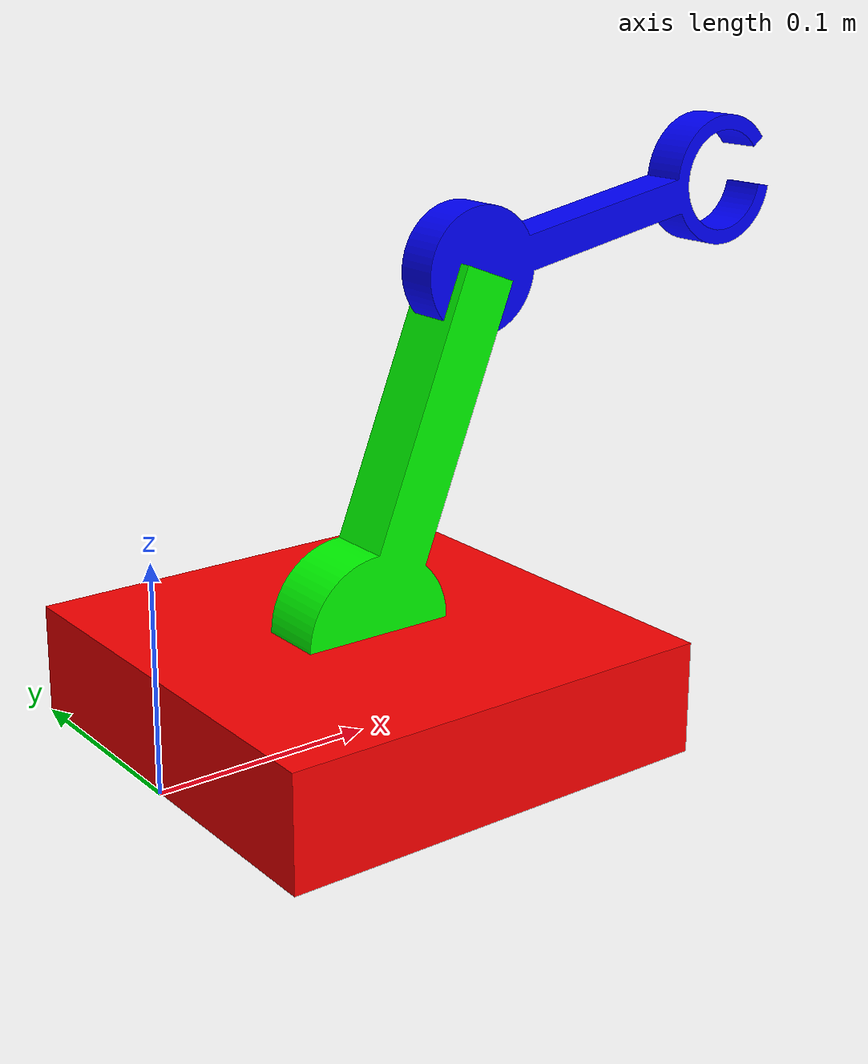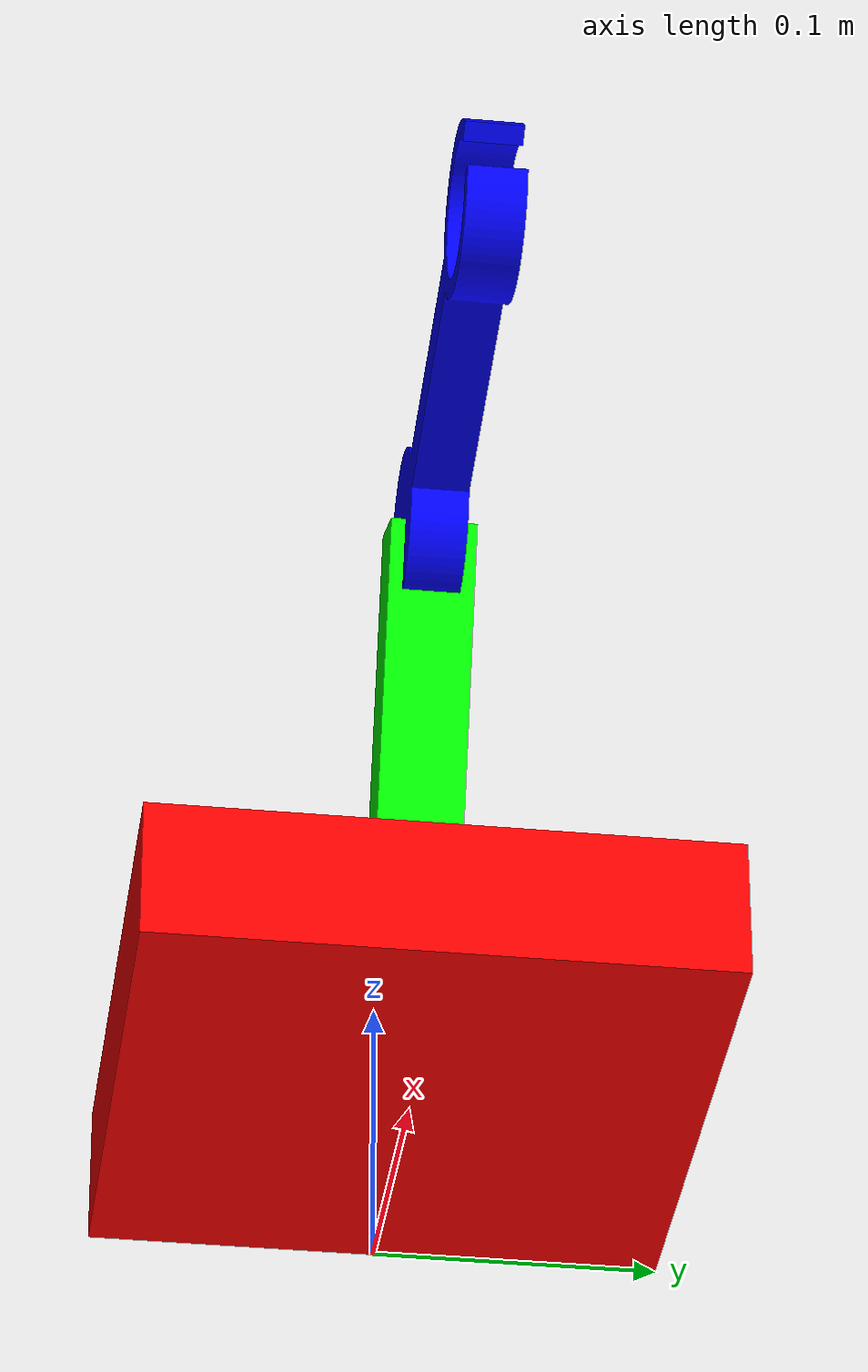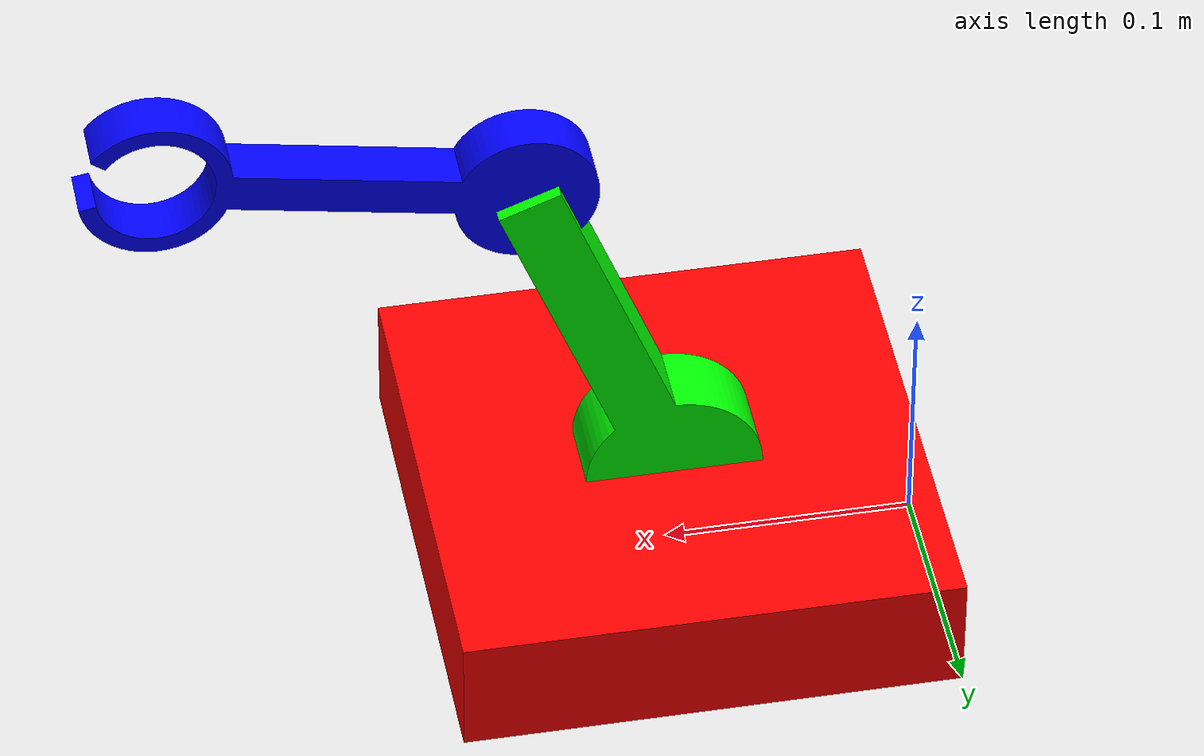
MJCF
<mujoco model="really_simple_arm">
    <compiler angle="radian"/>  <!-- use radians to define angles -->
    <default>
        <!-- set default attributes to clean up XML -->
        <!-- convert the Fusion 360 coordinate system to MuJoCo by setting a transform with xyaxes-->
        <geom type="mesh" xyaxes="1 0 0 0 0 1"/>
        <joint type="hinge" limited="true" axis="0 1 0"/>
        <!-- kp is proportional gain, kv is damping gain -->
        <position ctrllimited="true" kp="1" kv="0.1"/>
    </default>
    <asset>
        <!-- Fusion outputs meshes with mm units by default, but must be converted to m in MuJoCo, hence the scaling -->
        <mesh name="base" file="base.stl" scale="0.001 0.001 0.001"/>
        <mesh name="link1" file="link1.stl" scale="0.001 0.001 0.001"/>
        <mesh name="link2" file="link2.stl" scale="0.001 0.001 0.001"/>
    </asset>
    <worldbody>
        <body name="base">
            <geom mesh="base" rgba="1. 0. 0. 1."/>
            <body name="link1">
                <joint name="joint_1" pos="0.1 -0.015 0.05" range="-0.78 0.78"/>
                <geom mesh="link1" rgba="0. 1. 0. 1."/>
                <body name="link2">
                    <joint name="joint_2" pos="0.1583 -0.01 0.1994" range="-1.57 1.57"/>
                    <geom mesh="link2" rgba="0. 0. 1. 1."/>
                </body>
            </body>
        </body>
    </worldbody>

    <actuator>
        <position name="joint_1" joint="joint_1" ctrlrange="-0.78 0.78"/>
        <position name="joint_2" joint="joint_2" ctrlrange="-1.57 1.57"/>
    </actuator>
    <contact>
        <exclude body1="base" body2="link1"/>
        <exclude body1="link1" body2="link2"/>
    </contact>
</mujoco>
